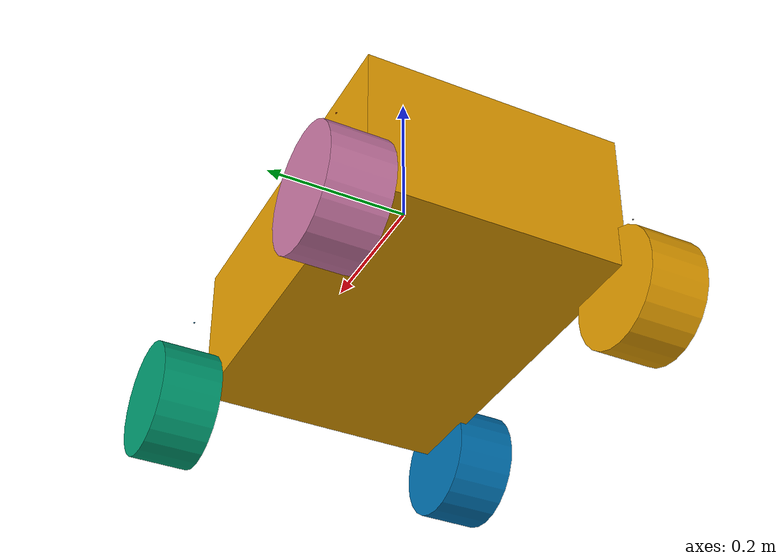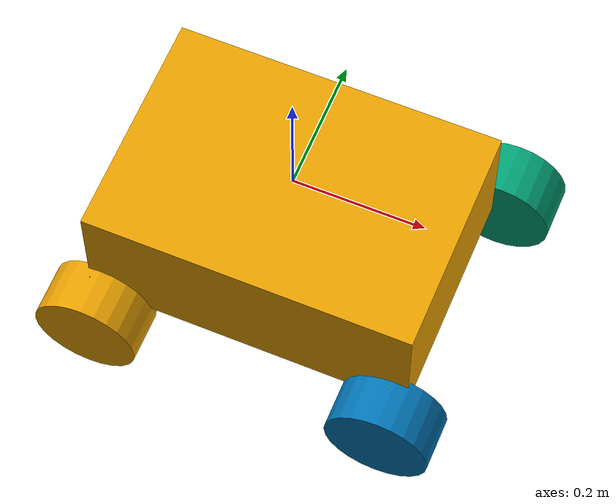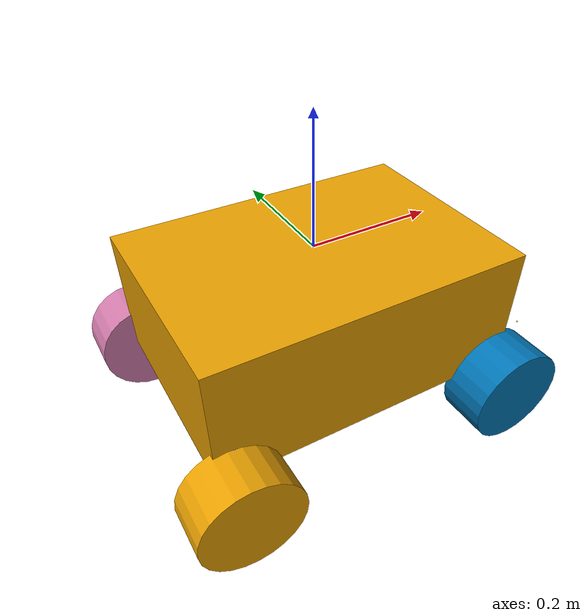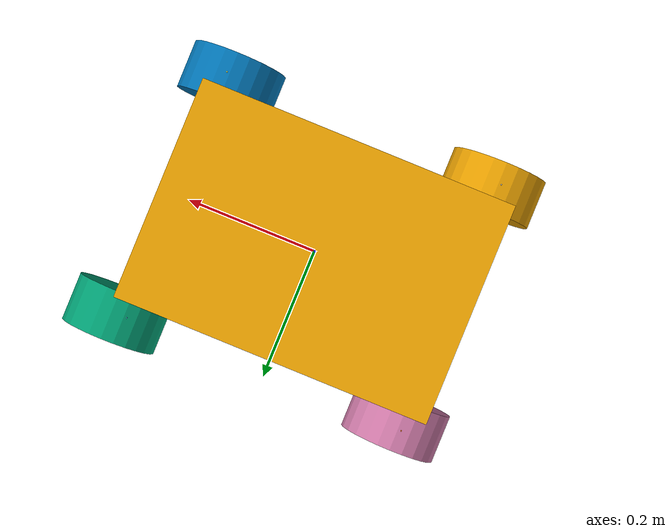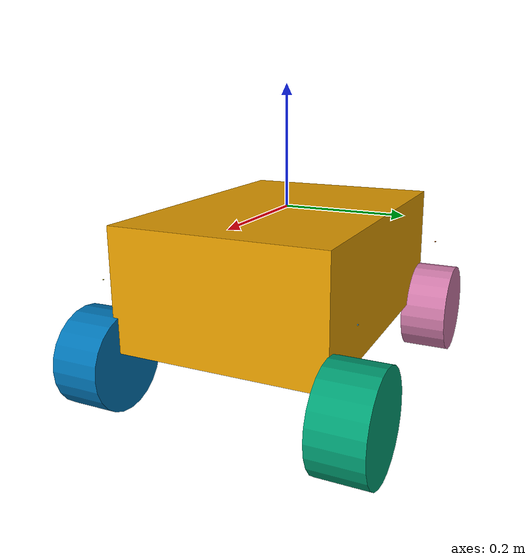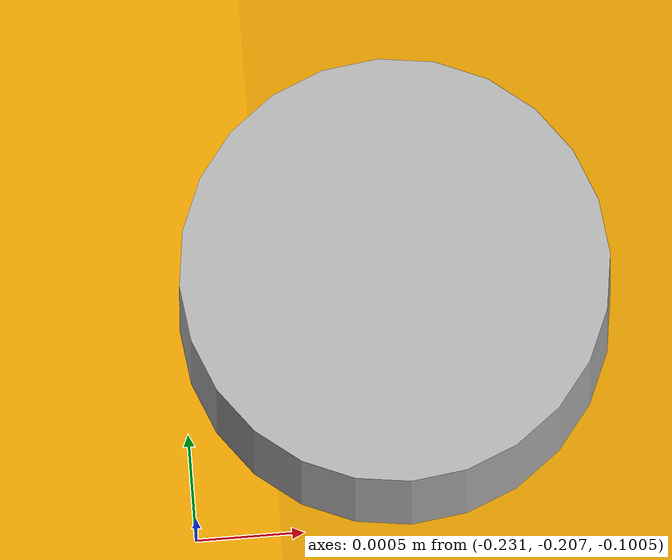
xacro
<?xml version="1.0"?>

<robot name="ranger_mini_v2"
    xmlns:xacro="http://ros.org/wiki/xacro">
    <!-- Base link -->
    <link name="base_link">
        <inertial>
            <origin xyz="0.0 0.0 0.0"/>
            <mass value="10"/>
            <inertia ixx="1" ixy="0.0" ixz="0.0" iyy="1" iyz="0.0" izz="1"/>
        </inertial>
        <visual>
            <origin xyz="0 0 -0.1" rpy="0 0 0" />
            <geometry>
                <box size="0.5 0.35 0.2"/>
            </geometry>
        </visual>
        <collision>
            <origin xyz="0 0 -0.1" rpy="0 0 0" />
            <geometry>
                <box size="0.5 0.35 0.2"/>
            </geometry>
        </collision>

    </link>

   <link name="fl_steering_wheel_link">
        <inertial>
            <origin xyz="0.0 0.0 0.0"/>
            <mass value="1"/>
            <inertia ixx="0.01" ixy="0.0" ixz="0.0" iyy="0.01" iyz="0.0" izz="0.01"/>
        </inertial>
        <visual>
            <origin xyz="0 0 0" rpy="0 0 0" />
            <geometry>
                <cylinder radius="0.001" length="0.001"/>
            </geometry>
        </visual>
        <collision>
            <origin xyz="0 0 0.008" rpy="0 0 0" />
            <geometry>
                <cylinder radius="0.001" length="0.001"/>
            </geometry>
        </collision>
        <collision>
            <origin xyz="0 0 0" rpy="0 0 0" />
            <geometry>
                <cylinder radius="0.001" length="0.001"/>
            </geometry>
        </collision>
    </link>
    <joint name="fl_steering_wheel" type="fixed">
        <origin xyz="0.23 0.206 -0.1" rpy="0 0 0" />
        <parent link="base_link"/>
        <child link="fl_steering_wheel_link"/>
    </joint>

        <link name="fl_wheel_link">
            <inertial>
                <mass value="8" />
                <origin xyz="0 0 0" />
                <inertia ixx="0.1171" ixy="0" ixz="0" iyy="0.1361" iyz="0" izz="0.1171" />
            </inertial>
            <visual>
                <origin xyz="0 0 0" rpy="1.57 0 0" />
                <geometry>
                    <cylinder length="0.08" radius="0.08" />
                </geometry>
            </visual>
            <collision>
                <origin xyz="0 0 0" rpy="1.57 0 0" />
                <geometry>
                    <cylinder length="0.08" radius="0.08" />
                </geometry>
            </collision>
        </link>

        <joint name="fl_wheel" type="fixed">
            <origin xyz="0.03 0.01 -0.12" rpy="0 0 0" />
            <parent link="fl_steering_wheel_link"/>
            <child link="fl_wheel_link"/>
        </joint>

   <link name="fr_steering_wheel_link">
        <inertial>
            <origin xyz="0.0 0.0 0.0" rpy="0.0 0.0 0.0"/>
            <mass value="1"/>
            <inertia ixx="0.01" ixy="0.0" ixz="0.0" iyy="0.01" iyz="0.0" izz="0.01"/>
        </inertial>
        <visual>
            <origin xyz="0 0 0.008" rpy="0 0 0" />
            <geometry>
                <cylinder radius="0.001" length="0.001"/>
            </geometry>
        </visual>
        <collision>
            <origin xyz="0 0 0.008" rpy="0 0 0" />
            <geometry>
                <cylinder radius="0.001" length="0.001"/>
            </geometry>
        </collision>
    </link>
    <joint name="fr_steering_wheel" type="fixed">
        <origin xyz="0.23 -0.206 -0.1" rpy="0 0 0" />
        <parent link="base_link"/>
        <child link="fr_steering_wheel_link"/>
    </joint>

        <link name="fr_wheel_link">
            <inertial>
                <mass value="8" />
                <origin xyz="0 0 0" />
                <inertia ixx="0.1171" ixy="0" ixz="0" iyy="0.1361" iyz="0" izz="0.1171" />
            </inertial>
            <visual>
                <origin xyz="0 0 0" rpy="1.57 0 0" />
                <geometry>
                    <cylinder length="0.08" radius="0.08" />
                </geometry>
            </visual>
            <collision>
                <origin xyz="0 0 0" rpy="1.57 0 0" />
                <geometry>
                    <cylinder length="0.08" radius="0.085" />
                </geometry>
            </collision>
        </link>

        <joint name="fr_wheel" type="fixed">
            <origin xyz="0.0 0.0 -0.12" rpy="0 0 0" />
            <parent link="fr_steering_wheel_link"/>
            <child link="fr_wheel_link"/>
        </joint>

   <link name="rl_steering_wheel_link">
        <inertial>
            <origin xyz="0.0 0.0 0.0" rpy="0.0 0.0 0.0"/>
            <mass value="1"/>
            <inertia ixx="0.01" ixy="0.0" ixz="0.0" iyy="0.01" iyz="0.0" izz="0.01"/>
        </inertial>
        <visual>
            <origin xyz="0 0 0.008" rpy="0 0 0" />
            <geometry>
                <cylinder radius="0.001" length="0.001"/>
            </geometry>
        </visual>
        <collision>
            <origin xyz="0 0 0.008" rpy="0 0 0" />
            <geometry>
                <cylinder radius="0.001" length="0.001"/>
            </geometry>
        </collision>
    </link>
    <joint name="rl_steering_wheel" type="fixed">
        <origin xyz="-0.23 0.206 -0.1" rpy="0 0 0" />
        <parent link="base_link"/>
        <child link="rl_steering_wheel_link"/>
    </joint>

        <link name="rl_wheel_link">
            <inertial>
                <mass value="8" />
                <origin xyz="0 0 0" />
                <inertia ixx="0.1171" ixy="0" ixz="0" iyy="0.1361" iyz="0" izz="0.1171" />
            </inertial>
            <visual>
                <origin xyz="0 0 0" rpy="1.57 0 0" />
                <geometry>
                    <cylinder length="0.08" radius="0.08" />
                </geometry>
            </visual>
            <collision>
                <origin xyz="0 0 0" rpy="1.57 0 0" />
                <geometry>
                    <cylinder length="0.08" radius="0.08" />
                </geometry>
            </collision>
        </link>

        <joint name="rl_wheel" type="fixed">
            <origin xyz="0.0 0.0 -0.12 " rpy="0 0 0" />
            <parent link="rl_steering_wheel_link"/>
            <child link="rl_wheel_link"/>
        </joint>

   <link name="rr_steering_wheel_link">
        <inertial>
            <origin xyz="0.0 0.0 0.0"/>
            <mass value="1"/>
            <inertia ixx="0.01" ixy="0.0" ixz="0.0" iyy="0.01" iyz="0.0" izz="0.01"/>
        </inertial>
        <visual>
            <origin xyz="0 0 0" rpy="0 0 0" />
            <geometry>
                <cylinder radius="0.001" length="0.001"/>
            </geometry>
        </visual>
        <collision>
            <origin xyz="0 0 0" rpy="0 0 0" />
            <geometry>
                <cylinder radius="0.001" length="0.001"/>
            </geometry>
        </collision>
    </link>
    <joint name="rr_steering_wheel" type="fixed">
        <origin xyz="-0.23 -0.206 -0.1" rpy="0 0 0" />
        <parent link="base_link"/>
        <child link="rr_steering_wheel_link"/>
    </joint>

        <link name="rr_wheel_link">
            <inertial>
                <mass value="8" />
                <origin xyz="0 0 0" />
                <inertia ixx="0.1171" ixy="0" ixz="0" iyy="0.1361" iyz="0" izz="0.1171" />
            </inertial>
            <visual>
                <origin xyz="0 0 0" rpy="1.57 0 0" />
                <geometry>
                    <cylinder length="0.08" radius="0.08" />
                </geometry>
            </visual>
            <collision>
                <origin xyz="0 0 0" rpy="1.57 0 0" />
                <geometry>
                    <cylinder length="0.08" radius="0.08" />
                </geometry>
            </collision>
        </link>

        <joint name="rr_wheel" type="fixed">
            <origin xyz="0.0 0.0 -0.12 " rpy="0 0 0" />
            <parent link="rr_steering_wheel_link"/>
            <child link="rr_wheel_link"/>
        </joint>
</robot>
